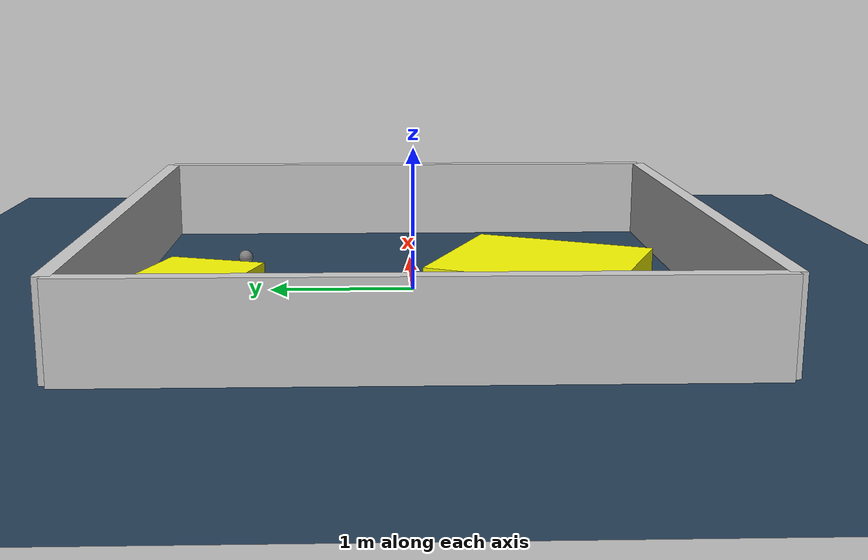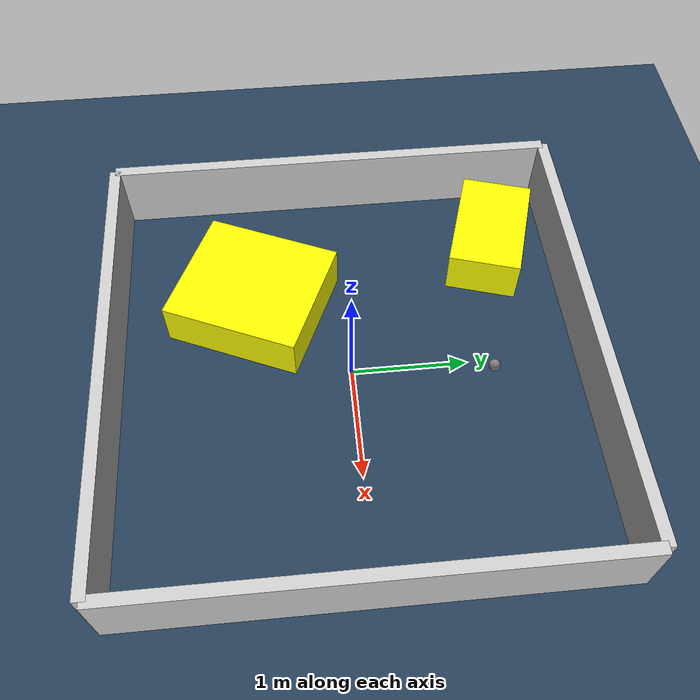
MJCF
<?xml version="1.0" ?>
<mujoco model="generated_environment">
  <option timestep="0.01" integrator="RK4" cone="elliptic"/>
  <default>
    <geom density="1"/>
  </default>
  <asset>
    <texture builtin="gradient" height="3072" rgb1="0.3 0.5 0.7" rgb2="0 0 0" type="skybox" width="512"/>
    <texture builtin="checker" height="300" mark="edge" markrgb="0.8 0.8 0.8" name="groundplane" rgb1="0.2 0.3 0.4" rgb2="0.1 0.2 0.3" type="2d" width="300"/>
    <material name="groundplane" reflectance="0.2" texrepeat="5 5" texture="groundplane" texuniform="true"/>
    <material name="robot" rgba="0.0 1.0 0.0 1"/>
  </asset>
  <worldbody>
    <light dir="0 0 -1" directional="true" pos="0 0 1.5"/>
    <geom condim="4" friction="1.0 0.005 0.001" material="groundplane" name="floor" size="0 0 0.05" type="plane"/>
    <body name="walls">
      <geom name="wall_1" condim="4" pos="-2.0 0.0 0.3" rgba="0.800000011920929 0.800000011920929 0.800000011920929 1.0" size="0.05 2.0 0.3" type="box"/>
      <geom name="wall_2" condim="4" pos="2.0 0.0 0.3" rgba="0.800000011920929 0.800000011920929 0.800000011920929 1.0" size="0.05 2.0 0.3" type="box"/>
      <geom name="wall_3" condim="4" pos="0.0 -2.0 0.3" rgba="0.800000011920929 0.800000011920929 0.800000011920929 1.0" size="2.0 0.05 0.3" type="box"/>
      <geom name="wall_4" condim="4" pos="0.0 2.0 0.3" rgba="0.800000011920929 0.800000011920929 0.800000011920929 1.0" size="2.0 0.05 0.3" type="box"/>
    </body>
    <body name="robot">
      <joint name="joint_x" type="slide" pos="0 0 0" axis="1 0 0"/>
      <joint name="joint_y" type="slide" pos="0 0 0" axis="0 1 0"/>
      <geom name="robot" type="sphere" pos="0.17149171213858327 1.1895331191497625 0.2" size="0.05" mass="5." friction="1.0 0.005 0.0001" condim="4"/>
      <site name="sensor_ball"/>
    </body>
    <body name="obstacle_1_movable">
      <geom name="obstacle_1_movable" condim="4" pos="-1.2405456743526082 1.3999190553726044 0.2" euler="0 0 162.8675606815078" friction="1.0 0.005 0.001" rgba="1 1 0 1" size="0.49905451642212195 0.31577329346840777 0.2" type="box" mass="0.1"/>
      <joint type="free"/>
    </body>
    <body name="obstacle_2_movable">
      <geom name="obstacle_2_movable" condim="4" pos="-0.7628527422394848 -0.8005359798696957 0.2" euler="0 0 246.06455728260033" friction="1.0 0.005 0.001" rgba="1 1 0 1" size="0.5975022844397507 0.542978955757286 0.2" type="box" mass="0.1"/>
      <joint type="free"/>
    </body>
  </worldbody>
  <actuator>
    <motor name="actuator_x" joint="joint_x" gear="1" ctrlrange="-1 1"/>
    <motor name="actuator_y" joint="joint_y" gear="1" ctrlrange="-1 1"/>
  </actuator>
</mujoco>
